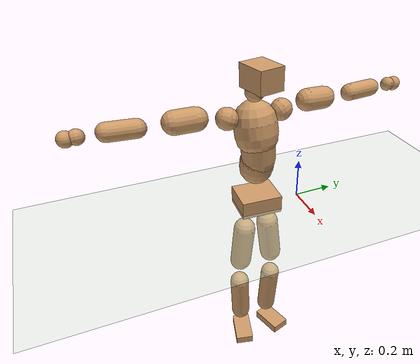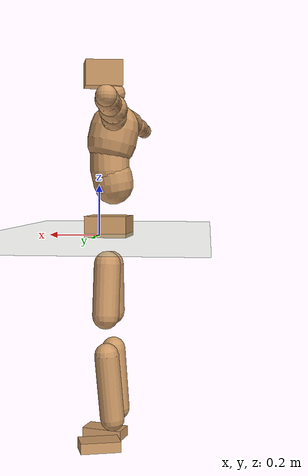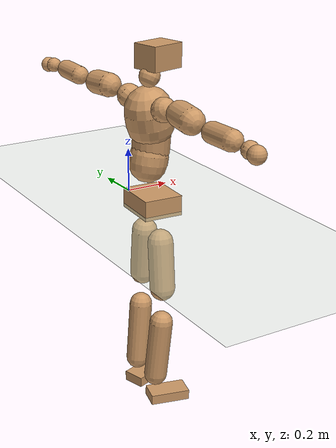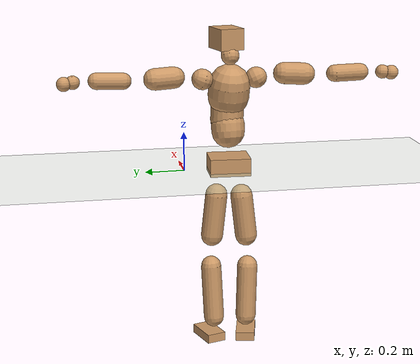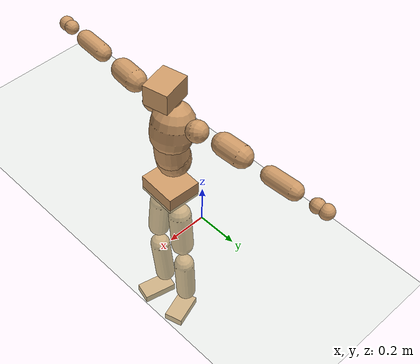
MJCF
<mujoco model="humanoid">
  <compiler coordinate="local" angle="radian"/>
  <default>
    <joint damping="0.0" armature="0.01" stiffness="0.0" limited="true"/>
    <geom conaffinity="1" condim="3" contype="7" margin="0.001" rgba="0.8 0.6 .4 1"/>
  </default>
  <asset>
    <texture type="skybox" builtin="gradient" rgb1=".4 .5 .6" rgb2="0 0 0" width="100" height="100"/>
    <texture builtin="flat" height="1278" mark="cross" markrgb="1 1 1" name="texgeom" random="0.01" rgb1="0.8 0.6 0.4" rgb2="0.8 0.6 0.4" type="cube" width="127"/>
    <texture builtin="checker" height="100" name="texplane" rgb1="0 0 0" rgb2="0.8 0.8 0.8" type="2d" width="100"/>
    <material name="MatPlane" reflectance="0.5" shininess="1" specular="1" texrepeat="60 60" texture="texplane"/>
    <material name="geom" texture="texgeom" texuniform="true"/>
  </asset>
  <worldbody>
    <light cutoff="100" diffuse="1 1 1" dir="-0 0 -1.3" directional="true" exponent="1" pos="0 0 1.3" specular=".1 .1 .1"/>
    <geom conaffinity="1" condim="3" name="floor" pos="0 0 0" rgba="0.8 0.9 0.8 1" size="100 100 .2" type="plane" material="MatPlane"/>
    <body name="Pelvis" pos="-0.0008 -0.2281 0.0335">
      <freejoint name="Pelvis"/>
      <geom type="box" contype="1" conaffinity="1" density="5359.374957" pos="-0.0096 0.0005 -0.0076" size="0.0888 0.1033 0.0447" quat="0.9997 0.0000 0.0000 -0.0261" name="Pelvis"/>
      <body name="L_Hip" pos="-0.0121 0.0557 -0.0809">
        <joint name="L_Hip_x" type="hinge" pos="0 0 0" axis="1 0 0" stiffness="1600" damping="160" armature="0.02" range="-180.0000 180.0000"/>
        <joint name="L_Hip_y" type="hinge" pos="0 0 0" axis="0 1 0" stiffness="1600" damping="160" armature="0.02" range="-180.0000 180.0000"/>
        <joint name="L_Hip_z" type="hinge" pos="0 0 0" axis="0 0 1" stiffness="1600" damping="160" armature="0.02" range="-180.0000 180.0000"/>
        <geom type="capsule" contype="1" conaffinity="1" density="2040.816327" size="0.0571" fromto="0.0017 0.0093 -0.0866 0.0059 0.0326 -0.3037" name="L_Hip"/>
        <body name="L_Knee" pos="0.0076 0.0419 -0.3903">
          <joint name="L_Knee_x" type="hinge" pos="0 0 0" axis="1 0 0" stiffness="1600" damping="160" armature="0.02" range="-180.0000 180.0000"/>
          <joint name="L_Knee_y" type="hinge" pos="0 0 0" axis="0 1 0" stiffness="1600" damping="160" armature="0.02" range="-180.0000 180.0000"/>
          <joint name="L_Knee_z" type="hinge" pos="0 0 0" axis="0 0 1" stiffness="1600" damping="160" armature="0.02" range="-180.0000 180.0000"/>
          <geom type="capsule" contype="1" conaffinity="1" density="1234.567901" size="0.0522" fromto="-0.0069 -0.0029 -0.0819 -0.0303 -0.0125 -0.3580" name="L_Knee"/>
          <body name="L_Ankle" pos="-0.0373 -0.0154 -0.4398">
            <joint name="L_Ankle_x" type="hinge" pos="0 0 0" axis="1 0 0" stiffness="1600" damping="160" armature="0.02" range="-180.0000 180.0000"/>
            <joint name="L_Ankle_y" type="hinge" pos="0 0 0" axis="0 1 0" stiffness="1600" damping="160" armature="0.02" range="-180.0000 180.0000"/>
            <joint name="L_Ankle_z" type="hinge" pos="0 0 0" axis="0 0 1" stiffness="1600" damping="160" armature="0.02" range="-180.0000 180.0000"/>
            <geom type="box" contype="1" conaffinity="1" density="1000.00004" pos="0.0615 0.0193 -0.0300" size="0.087 0.0498 0.0229" quat="0.9885 0.0000 0.0000 0.1510" name="L_Ankle"/>
            <body name="L_Toe" pos="0.1231 0.0385 -0.06">
              <joint name="L_Toe_x" type="hinge" pos="0 0 0" axis="1 0 0" stiffness="1000" damping="100" armature="0.02" range="-180.0000 180.0000"/>
              <joint name="L_Toe_y" type="hinge" pos="0 0 0" axis="0 1 0" stiffness="1000" damping="100" armature="0.02" range="-180.0000 180.0000"/>
              <joint name="L_Toe_z" type="hinge" pos="0 0 0" axis="0 0 1" stiffness="1000" damping="100" armature="0.02" range="-180.0000 180.0000"/>
              <geom type="box" contype="1" conaffinity="1" density="8343881.884283" pos="0.0000 0.0000 0.0298" size="0.001 0.0024 0.0011" quat="0.9878 0.0000 0.0000 0.1560" name="L_Toe"/>
            </body>
          </body>
        </body>
      </body>
      <body name="R_Hip" pos="-0.007 -0.0575 -0.0908">
        <joint name="R_Hip_x" type="hinge" pos="0 0 0" axis="1 0 0" stiffness="1600" damping="160" armature="0.02" range="-180.0000 180.0000"/>
        <joint name="R_Hip_y" type="hinge" pos="0 0 0" axis="0 1 0" stiffness="1600" damping="160" armature="0.02" range="-180.0000 180.0000"/>
        <joint name="R_Hip_z" type="hinge" pos="0 0 0" axis="0 0 1" stiffness="1600" damping="160" armature="0.02" range="-180.0000 180.0000"/>
        <geom type="capsule" contype="1" conaffinity="1" density="2040.816327" size="0.0567" fromto="-0.0009 -0.0097 -0.0861 -0.0033 -0.0340 -0.3028" name="R_Hip"/>
        <body name="R_Knee" pos="-0.0042 -0.0437 -0.3889">
          <joint name="R_Knee_x" type="hinge" pos="0 0 0" axis="1 0 0" stiffness="1600" damping="160" armature="0.02" range="-180.0000 180.0000"/>
          <joint name="R_Knee_y" type="hinge" pos="0 0 0" axis="0 1 0" stiffness="1600" damping="160" armature="0.02" range="-180.0000 180.0000"/>
          <joint name="R_Knee_z" type="hinge" pos="0 0 0" axis="0 0 1" stiffness="1600" damping="160" armature="0.02" range="-180.0000 180.0000"/>
          <geom type="capsule" contype="1" conaffinity="1" density="1234.567901" size="0.0526" fromto="-0.0063 0.0038 -0.0822 -0.0269 0.0160 -0.3515" name="R_Knee"/>
          <body name="R_Ankle" pos="-0.0332 0.0198 -0.4337">
            <joint name="R_Ankle_x" type="hinge" pos="0 0 0" axis="1 0 0" stiffness="1600" damping="160" armature="0.02" range="-180.0000 180.0000"/>
            <joint name="R_Ankle_y" type="hinge" pos="0 0 0" axis="0 1 0" stiffness="1600" damping="160" armature="0.02" range="-180.0000 180.0000"/>
            <joint name="R_Ankle_z" type="hinge" pos="0 0 0" axis="0 0 1" stiffness="1600" damping="160" armature="0.02" range="-180.0000 180.0000"/>
            <geom type="box" contype="1" conaffinity="1" density="1000.000001" pos="0.0651 -0.0158 -0.0323" size="0.0904 0.0492 0.0229" quat="0.9929 0.0000 0.0000 -0.1189" name="R_Ankle"/>
            <body name="R_Toe" pos="0.1301 -0.0316 -0.0645">
              <joint name="R_Toe_x" type="hinge" pos="0 0 0" axis="1 0 0" stiffness="1000" damping="100" armature="0.02" range="-180.0000 180.0000"/>
              <joint name="R_Toe_y" type="hinge" pos="0 0 0" axis="0 1 0" stiffness="1000" damping="100" armature="0.02" range="-180.0000 180.0000"/>
              <joint name="R_Toe_z" type="hinge" pos="0 0 0" axis="0 0 1" stiffness="1000" damping="100" armature="0.02" range="-180.0000 180.0000"/>
              <geom type="box" contype="1" conaffinity="1" density="8444643.876292" pos="0.0000 0.0000 0.0317" size="0.0011 0.0025 0.0011" quat="0.9939 0.0000 0.0000 -0.1101" name="R_Toe"/>
            </body>
          </body>
        </body>
      </body>
      <body name="Torso" pos="-0.0383 0.0048 0.1262">
        <joint name="Torso_x" type="hinge" pos="0 0 0" axis="1 0 0" stiffness="2000" damping="200" armature="0.02" range="-180.0000 180.0000"/>
        <joint name="Torso_y" type="hinge" pos="0 0 0" axis="0 1 0" stiffness="2000" damping="200" armature="0.02" range="-180.0000 180.0000"/>
        <joint name="Torso_z" type="hinge" pos="0 0 0" axis="0 0 1" stiffness="2000" damping="200" armature="0.02" range="-180.0000 180.0000"/>
        <geom type="capsule" contype="1" conaffinity="1" density="2040.816327" size="0.085" fromto="0.0162 0.0028 0.0834 0.0086 0.0015 0.0445" name="Torso"/>
        <body name="Spine" pos="0.0248 0.0043 0.1278">
          <joint name="Spine_x" type="hinge" pos="0 0 0" axis="1 0 0" stiffness="2000" damping="200" armature="0.02" range="-180.0000 180.0000"/>
          <joint name="Spine_y" type="hinge" pos="0 0 0" axis="0 1 0" stiffness="2000" damping="200" armature="0.02" range="-180.0000 180.0000"/>
          <joint name="Spine_z" type="hinge" pos="0 0 0" axis="0 0 1" stiffness="2000" damping="200" armature="0.02" range="-180.0000 180.0000"/>
          <geom type="capsule" contype="1" conaffinity="1" density="2040.816327" size="0.0834" fromto="0.0030 -0.0048 0.0832 -0.0011 0.0018 -0.0319" name="Spine"/>
          <body name="Chest" pos="0.0018 -0.003 0.0513">
            <joint name="Chest_x" type="hinge" pos="0 0 0" axis="1 0 0" stiffness="2000" damping="200" armature="0.02" range="-180.0000 180.0000"/>
            <joint name="Chest_y" type="hinge" pos="0 0 0" axis="0 1 0" stiffness="2000" damping="200" armature="0.02" range="-180.0000 180.0000"/>
            <joint name="Chest_z" type="hinge" pos="0 0 0" axis="0 0 1" stiffness="2000" damping="200" armature="0.02" range="-180.0000 180.0000"/>
            <geom type="capsule" contype="1" conaffinity="1" density="2040.816327" size="0.1048" fromto="-0.0215 -0.0061 0.1023 -0.0092 -0.0026 0.0435" name="Chest"/>
            <body name="Neck" pos="-0.0419 -0.0141 0.2086">
              <joint name="Neck_x" type="hinge" pos="0 0 0" axis="1 0 0" stiffness="1000" damping="100" armature="0.02" range="-180.0000 180.0000"/>
              <joint name="Neck_y" type="hinge" pos="0 0 0" axis="0 1 0" stiffness="1000" damping="100" armature="0.02" range="-180.0000 180.0000"/>
              <joint name="Neck_z" type="hinge" pos="0 0 0" axis="0 0 1" stiffness="1000" damping="100" armature="0.02" range="-180.0000 180.0000"/>
              <geom type="capsule" contype="1" conaffinity="1" density="1000" size="0.046" fromto="0.0224 0.0044 0.0389 0.0233 0.0045 0.0406" name="Neck"/>
              <body name="Head" pos="0.0457 0.0089 0.0795">
                <joint name="Head_x" type="hinge" pos="0 0 0" axis="1 0 0" stiffness="1000" damping="100" armature="0.02" range="-180.0000 180.0000"/>
                <joint name="Head_y" type="hinge" pos="0 0 0" axis="0 1 0" stiffness="1000" damping="100" armature="0.02" range="-180.0000 180.0000"/>
                <joint name="Head_z" type="hinge" pos="0 0 0" axis="0 0 1" stiffness="1000" damping="100" armature="0.02" range="-180.0000 180.0000"/>
                <geom type="box" contype="1" conaffinity="1" density="2250.000296" pos="0.0238 0.0055 0.0408" size="0.0774 0.0627 0.0534" quat="0.9937 0.0000 0.0000 0.1121" name="Head"/>
              </body>
            </body>
            <body name="L_Thorax" pos="-0.0243 0.0719 0.1145">
              <joint name="L_Thorax_x" type="hinge" pos="0 0 0" axis="1 0 0" stiffness="1000" damping="100" armature="0.02" range="-180.0000 180.0000"/>
              <joint name="L_Thorax_y" type="hinge" pos="0 0 0" axis="0 1 0" stiffness="1000" damping="100" armature="0.02" range="-180.0000 180.0000"/>
              <joint name="L_Thorax_z" type="hinge" pos="0 0 0" axis="0 0 1" stiffness="1000" damping="100" armature="0.02" range="-180.0000 180.0000"/>
              <geom type="capsule" contype="1" conaffinity="1" density="1000" size="0.0529" fromto="-0.0097 0.0605 0.0211 -0.0100 0.0623 0.0218" name="L_Thorax"/>
              <body name="L_Shoulder" pos="-0.0198 0.1228 0.0429">
                <joint name="L_Shoulder_x" type="hinge" pos="0 0 0" axis="1 0 0" stiffness="1000" damping="100" armature="0.02" range="-720.0000 720.0000"/>
                <joint name="L_Shoulder_y" type="hinge" pos="0 0 0" axis="0 1 0" stiffness="1000" damping="100" armature="0.02" range="-720.0000 720.0000"/>
                <joint name="L_Shoulder_z" type="hinge" pos="0 0 0" axis="0 0 1" stiffness="1000" damping="100" armature="0.02" range="-720.0000 720.0000"/>
                <geom type="capsule" contype="1" conaffinity="1" density="1000" size="0.0541" fromto="-0.0072 0.0837 -0.0043 -0.0154 0.1804 -0.0092" name="L_Shoulder"/>
                <body name="L_Elbow" pos="-0.0226 0.2641 -0.0135">
                  <joint name="L_Elbow_x" type="hinge" pos="0 0 0" axis="1 0 0" stiffness="1000" damping="100" armature="0.02" range="-720.0000 720.0000"/>
                  <joint name="L_Elbow_y" type="hinge" pos="0 0 0" axis="0 1 0" stiffness="1000" damping="100" armature="0.02" range="-720.0000 720.0000"/>
                  <joint name="L_Elbow_z" type="hinge" pos="0 0 0" axis="0 0 1" stiffness="1000" damping="100" armature="0.02" range="-720.0000 720.0000"/>
                  <geom type="capsule" contype="1" conaffinity="1" density="1000" size="0.0421" fromto="-0.0026 0.0720 0.0029 -0.0071 0.1991 0.0081" name="L_Elbow"/>
                  <body name="L_Wrist" pos="-0.0096 0.271 0.011">
                    <joint name="L_Wrist_x" type="hinge" pos="0 0 0" axis="1 0 0" stiffness="600" damping="60" armature="0.02" range="-180.0000 180.0000"/>
                    <joint name="L_Wrist_y" type="hinge" pos="0 0 0" axis="0 1 0" stiffness="600" damping="60" armature="0.02" range="-180.0000 180.0000"/>
                    <joint name="L_Wrist_z" type="hinge" pos="0 0 0" axis="0 0 1" stiffness="600" damping="60" armature="0.02" range="-180.0000 180.0000"/>
                    <geom type="capsule" contype="1" conaffinity="1" density="1000" size="0.0339" fromto="-0.0076 0.0422 -0.0049 -0.0079 0.0441 -0.0051" name="L_Wrist"/>
                    <body name="L_Hand" pos="-0.0155 0.0863 -0.01">
                      <joint name="L_Hand_x" type="hinge" pos="0 0 0" axis="1 0 0" stiffness="600" damping="60" armature="0.02" range="-180.0000 180.0000"/>
                      <joint name="L_Hand_y" type="hinge" pos="0 0 0" axis="0 1 0" stiffness="600" damping="60" armature="0.02" range="-180.0000 180.0000"/>
                      <joint name="L_Hand_z" type="hinge" pos="0 0 0" axis="0 0 1" stiffness="600" damping="60" armature="0.02" range="-180.0000 180.0000"/>
                      <geom type="sphere" contype="1" conaffinity="1" density="1000" size="0.0353" pos="0.0000 0.0000 0.0000" name="L_Hand"/>
                    </body>
                  </body>
                </body>
              </body>
            </body>
            <body name="R_Thorax" pos="-0.0258 -0.0838 0.1145">
              <joint name="R_Thorax_x" type="hinge" pos="0 0 0" axis="1 0 0" stiffness="1000" damping="100" armature="0.02" range="-180.0000 180.0000"/>
              <joint name="R_Thorax_y" type="hinge" pos="0 0 0" axis="0 1 0" stiffness="1000" damping="100" armature="0.02" range="-180.0000 180.0000"/>
              <joint name="R_Thorax_z" type="hinge" pos="0 0 0" axis="0 0 1" stiffness="1000" damping="100" armature="0.02" range="-180.0000 180.0000"/>
              <geom type="capsule" contype="1" conaffinity="1" density="1000" size="0.0531" fromto="-0.0042 -0.0553 0.0220 -0.0044 -0.0571 0.0228" name="R_Thorax"/>
              <body name="R_Shoulder" pos="-0.0086 -0.1124 0.0448">
                <joint name="R_Shoulder_x" type="hinge" pos="0 0 0" axis="1 0 0" stiffness="1000" damping="100" armature="0.02" range="-720.0000 720.0000"/>
                <joint name="R_Shoulder_y" type="hinge" pos="0 0 0" axis="0 1 0" stiffness="1000" damping="100" armature="0.02" range="-720.0000 720.0000"/>
                <joint name="R_Shoulder_z" type="hinge" pos="0 0 0" axis="0 0 1" stiffness="1000" damping="100" armature="0.02" range="-720.0000 720.0000"/>
                <geom type="capsule" contype="1" conaffinity="1" density="1000" size="0.0552" fromto="-0.0087 -0.0847 -0.0036 -0.0189 -0.1840 -0.0078" name="R_Shoulder"/>
                <body name="R_Elbow" pos="-0.0276 -0.2687 -0.0113">
                  <joint name="R_Elbow_x" type="hinge" pos="0 0 0" axis="1 0 0" stiffness="1000" damping="100" armature="0.02" range="-720.0000 720.0000"/>
                  <joint name="R_Elbow_y" type="hinge" pos="0 0 0" axis="0 1 0" stiffness="1000" damping="100" armature="0.02" range="-720.0000 720.0000"/>
                  <joint name="R_Elbow_z" type="hinge" pos="0 0 0" axis="0 0 1" stiffness="1000" damping="100" armature="0.02" range="-720.0000 720.0000"/>
                  <geom type="capsule" contype="1" conaffinity="1" density="1000" size="0.0432" fromto="-0.0022 -0.0732 0.0023 -0.0061 -0.2025 0.0063" name="R_Elbow"/>
                  <body name="R_Wrist" pos="-0.0082 -0.2757 0.0086">
                    <joint name="R_Wrist_x" type="hinge" pos="0 0 0" axis="1 0 0" stiffness="600" damping="60" armature="0.02" range="-180.0000 180.0000"/>
                    <joint name="R_Wrist_y" type="hinge" pos="0 0 0" axis="0 1 0" stiffness="600" damping="60" armature="0.02" range="-180.0000 180.0000"/>
                    <joint name="R_Wrist_z" type="hinge" pos="0 0 0" axis="0 0 1" stiffness="600" damping="60" armature="0.02" range="-180.0000 180.0000"/>
                    <geom type="capsule" contype="1" conaffinity="1" density="1000" size="0.035" fromto="-0.0049 -0.0436 -0.0041 -0.0051 -0.0456 -0.0043" name="R_Wrist"/>
                    <body name="R_Hand" pos="-0.01 -0.0892 -0.0084">
                      <joint name="R_Hand_x" type="hinge" pos="0 0 0" axis="1 0 0" stiffness="600" damping="60" armature="0.02" range="-180.0000 180.0000"/>
                      <joint name="R_Hand_y" type="hinge" pos="0 0 0" axis="0 1 0" stiffness="600" damping="60" armature="0.02" range="-180.0000 180.0000"/>
                      <joint name="R_Hand_z" type="hinge" pos="0 0 0" axis="0 0 1" stiffness="600" damping="60" armature="0.02" range="-180.0000 180.0000"/>
                      <geom type="sphere" contype="1" conaffinity="1" density="1000" size="0.0363" pos="0.0000 0.0000 0.0000" name="R_Hand"/>
                    </body>
                  </body>
                </body>
              </body>
            </body>
          </body>
        </body>
      </body>
    </body>
  </worldbody>
  <actuator>
    <motor name="L_Hip_x" joint="L_Hip_x" gear="500"/>
    <motor name="L_Hip_y" joint="L_Hip_y" gear="500"/>
    <motor name="L_Hip_z" joint="L_Hip_z" gear="500"/>
    <motor name="L_Knee_x" joint="L_Knee_x" gear="500"/>
    <motor name="L_Knee_y" joint="L_Knee_y" gear="500"/>
    <motor name="L_Knee_z" joint="L_Knee_z" gear="500"/>
    <motor name="L_Ankle_x" joint="L_Ankle_x" gear="500"/>
    <motor name="L_Ankle_y" joint="L_Ankle_y" gear="500"/>
    <motor name="L_Ankle_z" joint="L_Ankle_z" gear="500"/>
    <motor name="L_Toe_x" joint="L_Toe_x" gear="500"/>
    <motor name="L_Toe_y" joint="L_Toe_y" gear="500"/>
    <motor name="L_Toe_z" joint="L_Toe_z" gear="500"/>
    <motor name="R_Hip_x" joint="R_Hip_x" gear="500"/>
    <motor name="R_Hip_y" joint="R_Hip_y" gear="500"/>
    <motor name="R_Hip_z" joint="R_Hip_z" gear="500"/>
    <motor name="R_Knee_x" joint="R_Knee_x" gear="500"/>
    <motor name="R_Knee_y" joint="R_Knee_y" gear="500"/>
    <motor name="R_Knee_z" joint="R_Knee_z" gear="500"/>
    <motor name="R_Ankle_x" joint="R_Ankle_x" gear="500"/>
    <motor name="R_Ankle_y" joint="R_Ankle_y" gear="500"/>
    <motor name="R_Ankle_z" joint="R_Ankle_z" gear="500"/>
    <motor name="R_Toe_x" joint="R_Toe_x" gear="500"/>
    <motor name="R_Toe_y" joint="R_Toe_y" gear="500"/>
    <motor name="R_Toe_z" joint="R_Toe_z" gear="500"/>
    <motor name="Torso_x" joint="Torso_x" gear="500"/>
    <motor name="Torso_y" joint="Torso_y" gear="500"/>
    <motor name="Torso_z" joint="Torso_z" gear="500"/>
    <motor name="Spine_x" joint="Spine_x" gear="500"/>
    <motor name="Spine_y" joint="Spine_y" gear="500"/>
    <motor name="Spine_z" joint="Spine_z" gear="500"/>
    <motor name="Chest_x" joint="Chest_x" gear="500"/>
    <motor name="Chest_y" joint="Chest_y" gear="500"/>
    <motor name="Chest_z" joint="Chest_z" gear="500"/>
    <motor name="Neck_x" joint="Neck_x" gear="500"/>
    <motor name="Neck_y" joint="Neck_y" gear="500"/>
    <motor name="Neck_z" joint="Neck_z" gear="500"/>
    <motor name="Head_x" joint="Head_x" gear="500"/>
    <motor name="Head_y" joint="Head_y" gear="500"/>
    <motor name="Head_z" joint="Head_z" gear="500"/>
    <motor name="L_Thorax_x" joint="L_Thorax_x" gear="500"/>
    <motor name="L_Thorax_y" joint="L_Thorax_y" gear="500"/>
    <motor name="L_Thorax_z" joint="L_Thorax_z" gear="500"/>
    <motor name="L_Shoulder_x" joint="L_Shoulder_x" gear="500"/>
    <motor name="L_Shoulder_y" joint="L_Shoulder_y" gear="500"/>
    <motor name="L_Shoulder_z" joint="L_Shoulder_z" gear="500"/>
    <motor name="L_Elbow_x" joint="L_Elbow_x" gear="500"/>
    <motor name="L_Elbow_y" joint="L_Elbow_y" gear="500"/>
    <motor name="L_Elbow_z" joint="L_Elbow_z" gear="500"/>
    <motor name="L_Wrist_x" joint="L_Wrist_x" gear="500"/>
    <motor name="L_Wrist_y" joint="L_Wrist_y" gear="500"/>
    <motor name="L_Wrist_z" joint="L_Wrist_z" gear="500"/>
    <motor name="L_Hand_x" joint="L_Hand_x" gear="500"/>
    <motor name="L_Hand_y" joint="L_Hand_y" gear="500"/>
    <motor name="L_Hand_z" joint="L_Hand_z" gear="500"/>
    <motor name="R_Thorax_x" joint="R_Thorax_x" gear="500"/>
    <motor name="R_Thorax_y" joint="R_Thorax_y" gear="500"/>
    <motor name="R_Thorax_z" joint="R_Thorax_z" gear="500"/>
    <motor name="R_Shoulder_x" joint="R_Shoulder_x" gear="500"/>
    <motor name="R_Shoulder_y" joint="R_Shoulder_y" gear="500"/>
    <motor name="R_Shoulder_z" joint="R_Shoulder_z" gear="500"/>
    <motor name="R_Elbow_x" joint="R_Elbow_x" gear="500"/>
    <motor name="R_Elbow_y" joint="R_Elbow_y" gear="500"/>
    <motor name="R_Elbow_z" joint="R_Elbow_z" gear="500"/>
    <motor name="R_Wrist_x" joint="R_Wrist_x" gear="500"/>
    <motor name="R_Wrist_y" joint="R_Wrist_y" gear="500"/>
    <motor name="R_Wrist_z" joint="R_Wrist_z" gear="500"/>
    <motor name="R_Hand_x" joint="R_Hand_x" gear="500"/>
    <motor name="R_Hand_y" joint="R_Hand_y" gear="500"/>
    <motor name="R_Hand_z" joint="R_Hand_z" gear="500"/>
  </actuator>
  <contact>
    <exclude body1="Torso" body2="Chest"/>
    <exclude body1="Head" body2="Chest"/>
    <exclude body1="R_Knee" body2="R_Toe"/>
    <exclude body1="R_Knee" body2="L_Ankle"/>
    <exclude body1="R_Knee" body2="L_Toe"/>
    <exclude body1="L_Knee" body2="L_Toe"/>
    <exclude body1="L_Knee" body2="R_Ankle"/>
    <exclude body1="L_Knee" body2="R_Toe"/>
    <exclude body1="L_Shoulder" body2="Chest"/>
    <exclude body1="R_Shoulder" body2="Chest"/>
  </contact>
  <sensor/>
  <size njmax="700" nconmax="700"/>
</mujoco>
